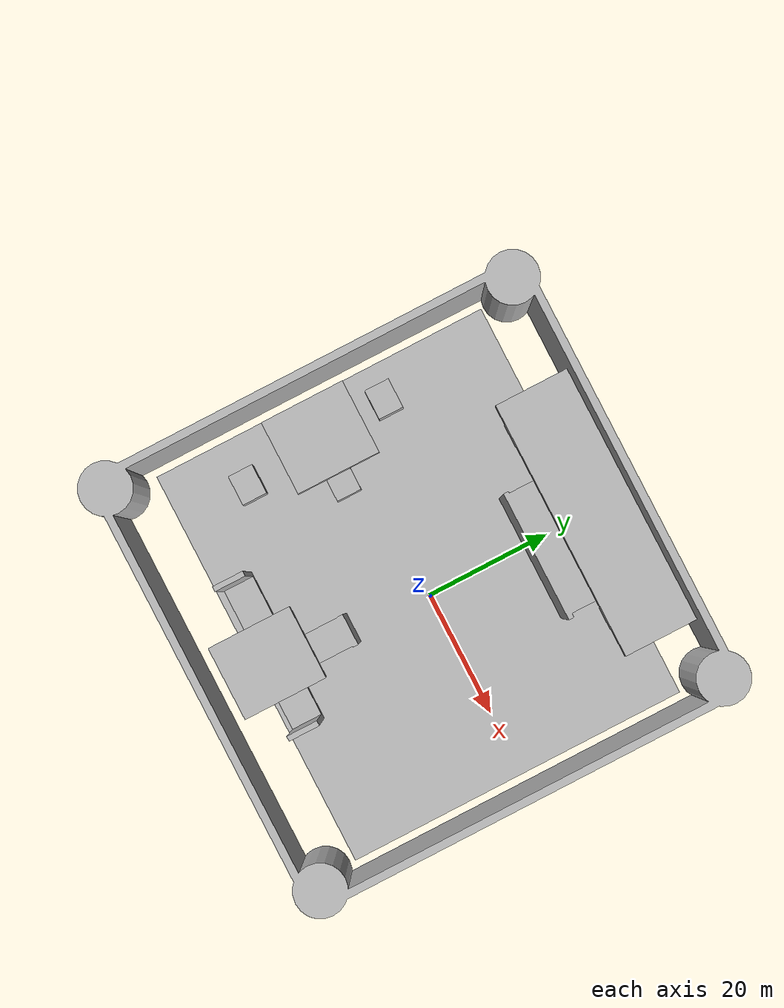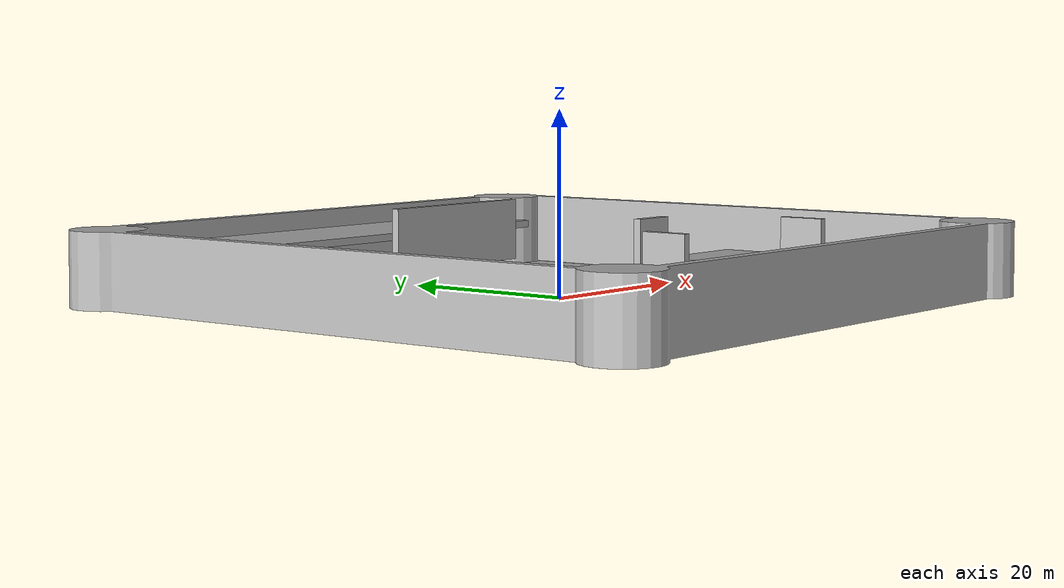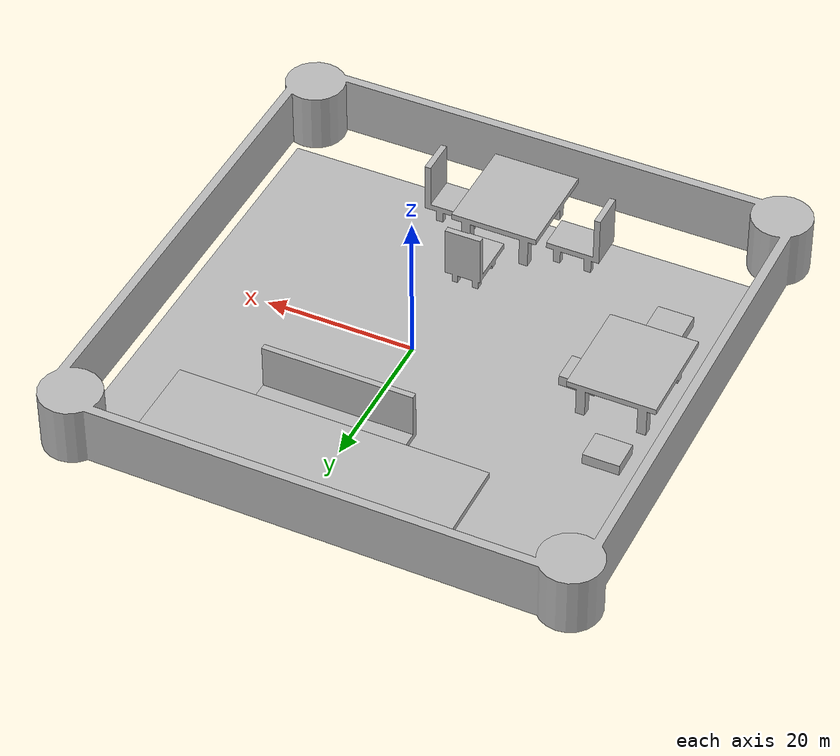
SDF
<?xml version="1.0" ?>
<sdf version="1.5">
  <model name="room">
    <static>true</static>
    <link name="walllink">
      <collision name="wallcollision">
        <pose>0 0 0 0 0 0</pose>
        <geometry>
          <mesh>
            <scale>0.4 0.4 0.4</scale>
            <uri>model://room/meshes/walls.obj</uri>
            <acoustic>
              <material>brick</material>
              <properties>
                <lowFrequencyAbsorption>0.1</lowFrequencyAbsorption>
                <midFrequencyAbsorption>0.5</midFrequencyAbsorption>
                <highFrequencyAbsorption>0.9</highFrequencyAbsorption>
                <scattering>0.5</scattering>
                <lowFrequencyTransmission>0.9</lowFrequencyTransmission>
                <midFrequencyTransmission>0.5</midFrequencyTransmission>
                <highFrequencyTransmission>0.1</highFrequencyTransmission>
              </properties>
            </acoustic>
          </mesh>
        </geometry>
      </collision>
      <visual name="wallsvisual">
        <pose>0 0 0 0 0 0</pose>
        <geometry>
          <mesh>
            <scale>0.4 0.4 0.4</scale>
            <uri>model://room/meshes/walls.obj</uri>
          </mesh>
        </geometry>
      </visual>
    </link>

    <link name="chair1link">
      <collision name="chair1collision">
        <pose>1 -1.5 0 0 0 0</pose>
        <geometry>
          <mesh>
            <scale>0.4 0.4 0.4</scale>
            <uri>model://room/meshes/chair1.obj</uri>
            <acoustic>
              <material>brick</material>
              <properties>
                <lowFrequencyAbsorption>0.1</lowFrequencyAbsorption>
                <midFrequencyAbsorption>0.5</midFrequencyAbsorption>
                <highFrequencyAbsorption>0.9</highFrequencyAbsorption>
                <scattering>0.5</scattering>
                <lowFrequencyTransmission>0.9</lowFrequencyTransmission>
                <midFrequencyTransmission>0.5</midFrequencyTransmission>
                <highFrequencyTransmission>0.1</highFrequencyTransmission>
              </properties>
            </acoustic>
          </mesh>
        </geometry>
      </collision>
      <visual name="chair1visual">
        <pose>1 -1.5 0 0 0 0</pose>
        <geometry>
          <mesh>
            <scale>0.4 0.4 0.4</scale>
            <uri>model://room/meshes/chair1.obj</uri>
          </mesh>
        </geometry>
      </visual>
    </link>

    <link name="chair2link">
      <collision name="chair2collision">
        <pose>1.5 -1.5 0 0 0 0</pose>
        <geometry>
          <mesh>
            <scale>0.4 0.4 0.4</scale>
            <uri>model://room/meshes/chair2.obj</uri>
            <acoustic>
              <material>wood</material>
              <properties>
                <lowFrequencyAbsorption>0.1</lowFrequencyAbsorption>
                <midFrequencyAbsorption>0.5</midFrequencyAbsorption>
                <highFrequencyAbsorption>0.9</highFrequencyAbsorption>
                <scattering>0.5</scattering>
                <lowFrequencyTransmission>0.9</lowFrequencyTransmission>
                <midFrequencyTransmission>0.5</midFrequencyTransmission>
                <highFrequencyTransmission>0.1</highFrequencyTransmission>
              </properties>
            </acoustic>
          </mesh>
        </geometry>
      </collision>
      <visual name="chair2visual">
        <pose>1.5 -1.5 0 0 0 0</pose>
        <geometry>
          <mesh>
            <scale>0.4 0.4 0.4</scale>
            <uri>model://room/meshes/chair2.obj</uri>
          </mesh>
        </geometry>
      </visual>
    </link>

    <link name="chair3link">
      <collision name="chair3collision">
        <pose>1 -1 0 0 0 0</pose>
        <geometry>
          <mesh>
            <scale>0.4 0.4 0.4</scale>
            <uri>model://room/meshes/chair3.obj</uri>
            <acoustic>
              <material>wood</material>
              <properties>
                <lowFrequencyAbsorption>0.1</lowFrequencyAbsorption>
                <midFrequencyAbsorption>0.5</midFrequencyAbsorption>
                <highFrequencyAbsorption>0.9</highFrequencyAbsorption>
                <scattering>0.5</scattering>
                <lowFrequencyTransmission>0.9</lowFrequencyTransmission>
                <midFrequencyTransmission>0.5</midFrequencyTransmission>
                <highFrequencyTransmission>0.1</highFrequencyTransmission>
              </properties>
            </acoustic>
          </mesh>
        </geometry>
      </collision>
      <visual name="chair3visual">
        <pose>1 -1 0 0 0 0</pose>
        <geometry>
          <mesh>
            <scale>0.4 0.4 0.4</scale>
            <uri>model://room/meshes/chair3.obj</uri>
          </mesh>
        </geometry>
      </visual>
    </link>

    <link name="longchairlink">
      <collision name="longchaircollision">
        <pose>-4 0.5 0 0 0 -1.57</pose>
        <geometry>
          <mesh>
            <scale>0.4 0.4 0.4</scale>
            <uri>model://room/meshes/longchair.obj</uri>
            <acoustic>
              <material>wood</material>
              <properties>
                <lowFrequencyAbsorption>0.1</lowFrequencyAbsorption>
                <midFrequencyAbsorption>0.5</midFrequencyAbsorption>
                <highFrequencyAbsorption>0.9</highFrequencyAbsorption>
                <scattering>0.5</scattering>
                <lowFrequencyTransmission>0.9</lowFrequencyTransmission>
                <midFrequencyTransmission>0.5</midFrequencyTransmission>
                <highFrequencyTransmission>0.1</highFrequencyTransmission>
              </properties>
            </acoustic>
          </mesh>
        </geometry>
      </collision>
      <visual name="longchairvisual">
        <pose>-4 0.5 0 0 0 -1.57</pose>
        <geometry>
          <mesh>
            <scale>0.4 0.4 0.4</scale>
            <uri>model://room/meshes/longchair.obj</uri>
          </mesh>
        </geometry>
      </visual>
    </link>

    <link name="longtablelink">
      <collision name="longtablecollision">
        <pose>-4 1 0 0 0 -1.57</pose>
        <geometry>
          <mesh>
            <scale>0.4 0.4 0.4</scale>
            <uri>model://room/meshes/longtable.obj</uri>
            <acoustic>
              <material>wood</material>
              <properties>
                <lowFrequencyAbsorption>0.1</lowFrequencyAbsorption>
                <midFrequencyAbsorption>0.5</midFrequencyAbsorption>
                <highFrequencyAbsorption>0.9</highFrequencyAbsorption>
                <scattering>0.5</scattering>
                <lowFrequencyTransmission>0.9</lowFrequencyTransmission>
                <midFrequencyTransmission>0.5</midFrequencyTransmission>
                <highFrequencyTransmission>0.1</highFrequencyTransmission>
              </properties>
            </acoustic>
          </mesh>
        </geometry>
      </collision>
      <visual name="longtablevisual">
        <pose>-4 1 0 0 0 -1.57</pose>
        <geometry>
          <mesh>
            <scale>0.4 0.4 0.4</scale>
            <uri>model://room/meshes/longtable.obj</uri>
          </mesh>
        </geometry>
      </visual>
    </link>

    <link name="smallchair1link">
      <collision name="smallchair1collision">
        <pose>-48 -5 0 0 0 0</pose>
        <geometry>
          <mesh>
            <scale>0.4 0.4 0.4</scale>
            <uri>model://room/meshes/smallchair1.obj</uri>
            <acoustic>
              <material>wood</material>
              <properties>
                <lowFrequencyAbsorption>0.1</lowFrequencyAbsorption>
                <midFrequencyAbsorption>0.5</midFrequencyAbsorption>
                <highFrequencyAbsorption>0.9</highFrequencyAbsorption>
                <scattering>0.5</scattering>
                <lowFrequencyTransmission>0.9</lowFrequencyTransmission>
                <midFrequencyTransmission>0.5</midFrequencyTransmission>
                <highFrequencyTransmission>0.1</highFrequencyTransmission>
              </properties>
            </acoustic>
          </mesh>
        </geometry>
      </collision>
      <visual name="smallchair1visual">
        <pose>-48 -5 0 0 0 0</pose>
        <geometry>
          <mesh>
            <scale>0.4 0.4 0.4</scale>
            <uri>model://room/meshes/smallchair1.obj</uri>
          </mesh>
        </geometry>
      </visual>
    </link>

    <link name="smallchair2link">
      <collision name="smallchair2collision">
        <pose>-30 -5 0 0 0 0</pose>
        <geometry>
          <mesh>
            <scale>0.4 0.4 0.4</scale>
            <uri>model://room/meshes/smallchair2.obj</uri>
            <acoustic>
              <material>wood</material>
              <properties>
                <lowFrequencyAbsorption>0.1</lowFrequencyAbsorption>
                <midFrequencyAbsorption>0.5</midFrequencyAbsorption>
                <highFrequencyAbsorption>0.9</highFrequencyAbsorption>
                <scattering>0.5</scattering>
                <lowFrequencyTransmission>0.9</lowFrequencyTransmission>
                <midFrequencyTransmission>0.5</midFrequencyTransmission>
                <highFrequencyTransmission>0.1</highFrequencyTransmission>
              </properties>
            </acoustic>
          </mesh>
        </geometry>
      </collision>
      <visual name="smallchair2visual">
        <pose>-30 -5 0 0 0 0</pose>
        <geometry>
          <mesh>
            <scale>0.4 0.4 0.4</scale>
            <uri>model://room/meshes/smallchair2.obj</uri>
          </mesh>
        </geometry>
      </visual>
    </link>

    <link name="smallchair3link">
      <collision name="smallchair3collision">
        <pose>-48 -5 0 0 0 0</pose>
        <geometry>
          <mesh>
            <scale>0.4 0.4 0.4</scale>
            <uri>model://room/meshes/smallchair3.obj</uri>
            <acoustic>
              <material>wood</material>
              <properties>
                <lowFrequencyAbsorption>0.1</lowFrequencyAbsorption>
                <midFrequencyAbsorption>0.5</midFrequencyAbsorption>
                <highFrequencyAbsorption>0.9</highFrequencyAbsorption>
                <scattering>0.5</scattering>
                <lowFrequencyTransmission>0.9</lowFrequencyTransmission>
                <midFrequencyTransmission>0.5</midFrequencyTransmission>
                <highFrequencyTransmission>0.1</highFrequencyTransmission>
              </properties>
            </acoustic>
          </mesh>
        </geometry>
      </collision>
      <visual name="smallchair3visual">
        <pose>-48 -5 0 0 0 0</pose>
        <geometry>
          <mesh>
            <scale>0.4 0.4 0.4</scale>
            <uri>model://room/meshes/smallchair3.obj</uri>
          </mesh>
        </geometry>
      </visual>
    </link>

    <link name="table1link">
      <collision name="table1collision">
        <pose>0 -2 0 0 0 0</pose>
        <geometry>
          <mesh>
            <scale>0.4 0.4 0.4</scale>
            <uri>model://room/meshes/table1.obj</uri>
            <acoustic>
              <material>wood</material>
              <properties>
                <lowFrequencyAbsorption>0.1</lowFrequencyAbsorption>
                <midFrequencyAbsorption>0.5</midFrequencyAbsorption>
                <highFrequencyAbsorption>0.9</highFrequencyAbsorption>
                <scattering>0.5</scattering>
                <lowFrequencyTransmission>0.9</lowFrequencyTransmission>
                <midFrequencyTransmission>0.5</midFrequencyTransmission>
                <highFrequencyTransmission>0.1</highFrequencyTransmission>
              </properties>
            </acoustic>
          </mesh>
        </geometry>
      </collision>
      <visual name="table1visual">
        <pose>0 -2 0 0 0 0</pose>
        <geometry>
          <mesh>
            <scale>0.4 0.4 0.4</scale>
            <uri>model://room/meshes/table1.obj</uri>
          </mesh>
        </geometry>
      </visual>
    </link>

    <link name="table2link">
      <collision name="table1collision">
        <pose>-47 -5 0 0 0 0</pose>
        <geometry>
          <mesh>
            <scale>0.4 0.4 0.4</scale>
            <uri>model://room/meshes/table2.obj</uri>
            <acoustic>
              <material>wood</material>
              <properties>
                <lowFrequencyAbsorption>0.1</lowFrequencyAbsorption>
                <midFrequencyAbsorption>0.5</midFrequencyAbsorption>
                <highFrequencyAbsorption>0.9</highFrequencyAbsorption>
                <scattering>0.5</scattering>
                <lowFrequencyTransmission>0.9</lowFrequencyTransmission>
                <midFrequencyTransmission>0.5</midFrequencyTransmission>
                <highFrequencyTransmission>0.1</highFrequencyTransmission>
              </properties>
            </acoustic>
          </mesh>
        </geometry>
      </collision>
      <visual name="table2visual">
        <pose>-47 -5 0 0 0 0</pose>
        <geometry>
          <mesh>
            <scale>0.4 0.4 0.4</scale>
            <uri>model://room/meshes/table2.obj</uri>
          </mesh>
        </geometry>
      </visual>
    </link>

    <link name="carpet">
      <collision name="carpetcollision">
        <pose>0 0 0 0 0 0</pose>
        <geometry>
          <mesh>
            <scale>0.4 0.4 0.4</scale>
            <uri>model://room/meshes/carpet.obj</uri>
            <acoustic>
              <material>carpet</material>
              <properties>
                <lowFrequencyAbsorption>0.1</lowFrequencyAbsorption>
                <midFrequencyAbsorption>0.5</midFrequencyAbsorption>
                <highFrequencyAbsorption>0.9</highFrequencyAbsorption>
                <scattering>0.5</scattering>
                <lowFrequencyTransmission>0.9</lowFrequencyTransmission>
                <midFrequencyTransmission>0.5</midFrequencyTransmission>
                <highFrequencyTransmission>0.1</highFrequencyTransmission>
              </properties>
            </acoustic>
          </mesh>
        </geometry>
      </collision>
      <visual name="carpetvisual">
        <pose>0 0 0 0 0 0</pose>
        <geometry>
          <mesh>
            <scale>0.4 0.4 0.4</scale>
            <uri>model://room/meshes/carpet.obj</uri>
          </mesh>
        </geometry>
      </visual>
    </link>
  </model>
</sdf>
